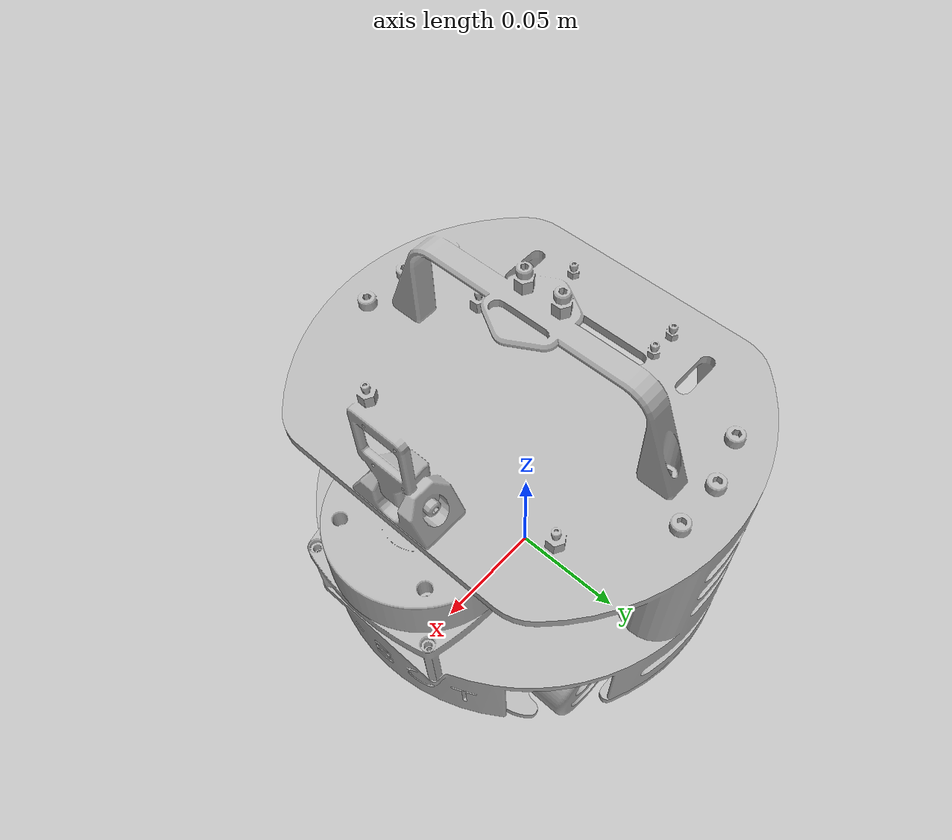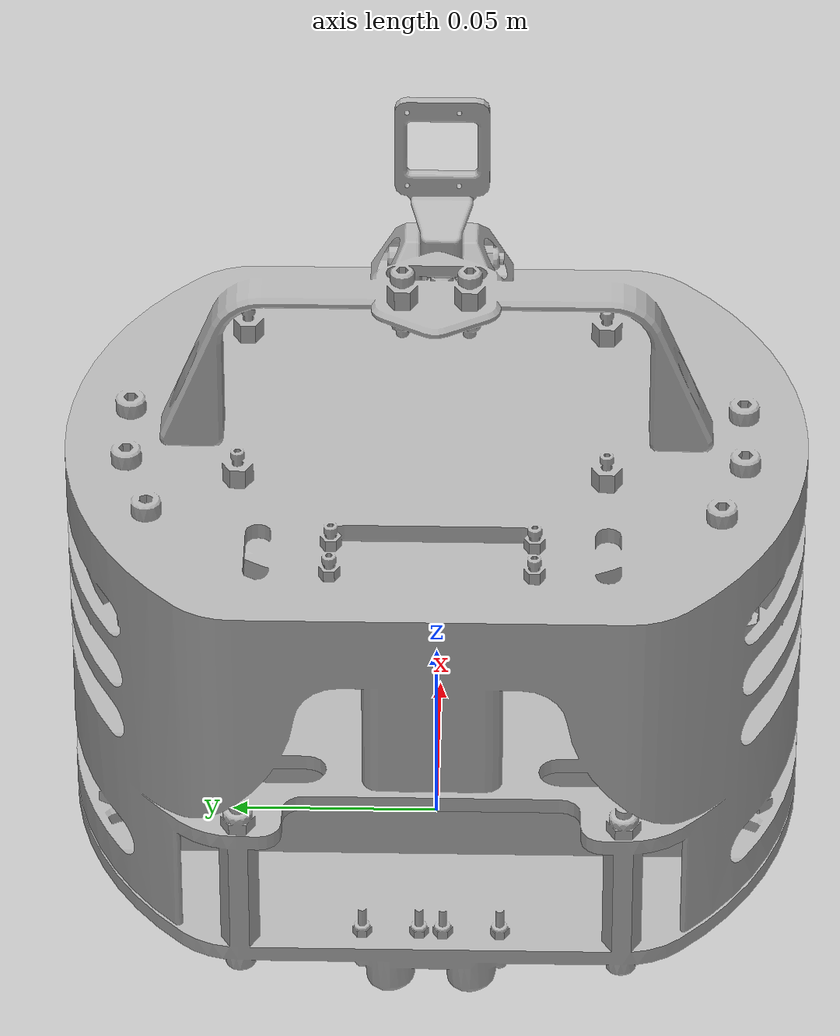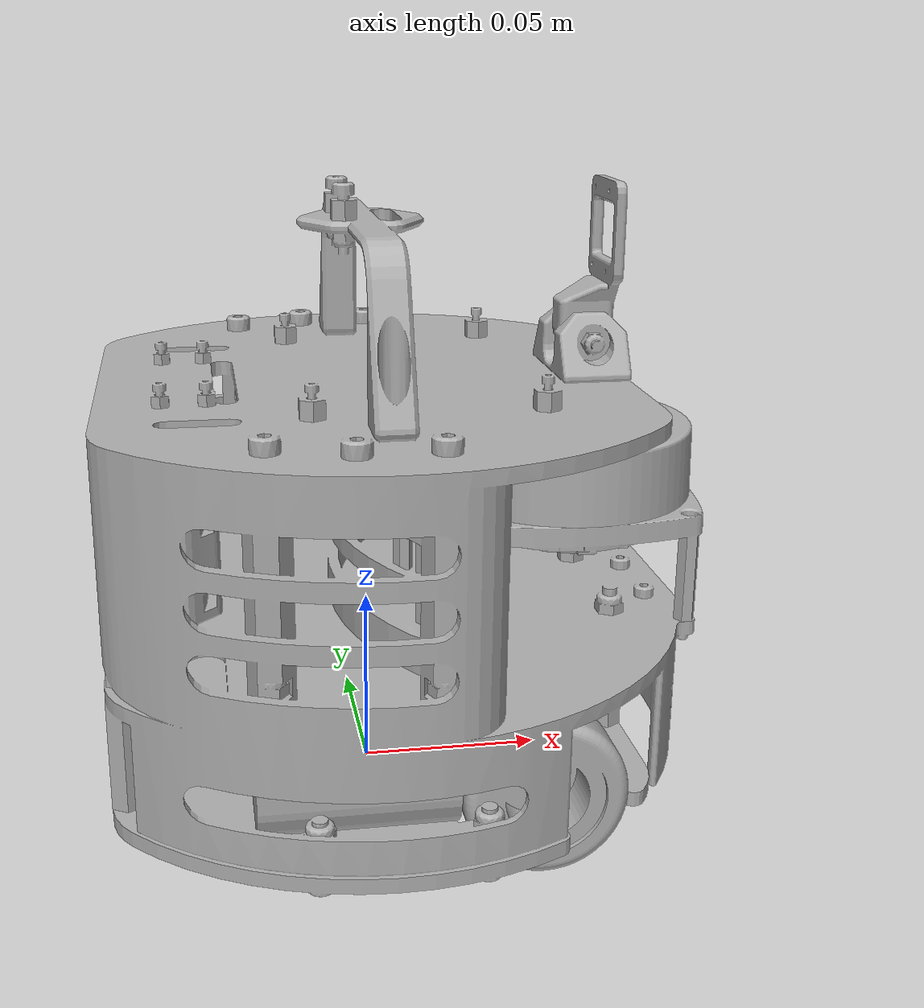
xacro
<?xml version="1.0" ?>
<robot name="qbot-urdf" xmlns:xacro="http://www.ros.org/wiki/xacro">

<xacro:include filename="$(find qbot-urdf_description)/urdf/materials.xacro" />
<xacro:include filename="$(find qbot-urdf_description)/urdf/qbot-urdf.trans" />
<xacro:include filename="$(find qbot-urdf_description)/urdf/qbot-urdf.gazebo" />
<link name="base_link">
  <inertial>
    <origin rpy="0 0 0" xyz="-9.562856620619356e-05 -2.3834541287568013e-05 0.06377004995936014"/>
    <mass value="0.4341808115577019"/>
    <inertia ixx="0.001744" ixy="0.0" ixz="3.1e-05" iyy="0.001414" iyz="-0.0" izz="0.001778"/>
  </inertial>
  <visual>
    <origin rpy="0 0 0" xyz="0 0 0"/>
    <geometry>
      <mesh filename="package://qbot-urdf_description/meshes/base_link.stl" scale="0.001 0.001 0.001"/>
    </geometry>
    <material name="silver"/>
  </visual>
  <collision>
    <origin rpy="0 0 0" xyz="0 0 0"/>
    <geometry>
      <mesh filename="package://qbot-urdf_description/meshes/base_link.stl" scale="0.001 0.001 0.001"/>
    </geometry>
  </collision>
</link>

<link name="lidar_1">
  <inertial>
    <origin rpy="0 0 0" xyz="-0.0032369885513544375 -0.000363627882546586 0.013199471314095074"/>
    <mass value="0.010966225281964493"/>
    <inertia ixx="5e-06" ixy="-0.0" ixz="-0.0" iyy="5e-06" iyz="-0.0" izz="1e-05"/>
  </inertial>
  <visual>
    <origin rpy="0 0 0" xyz="-0.05581 2.6e-05 -0.080623"/>
    <geometry>
      <mesh filename="package://qbot-urdf_description/meshes/lidar_1.stl" scale="0.001 0.001 0.001"/>
    </geometry>
    <material name="silver"/>
  </visual>
  <collision>
    <origin rpy="0 0 0" xyz="-0.05581 2.6e-05 -0.080623"/>
    <geometry>
      <mesh filename="package://qbot-urdf_description/meshes/lidar_1.stl" scale="0.001 0.001 0.001"/>
    </geometry>
  </collision>
</link>

<link name="left_wheel_1">
  <inertial>
    <origin rpy="0 0 0" xyz="-1.7773601634907266e-07 0.0001934840502160473 -1.502494489241668e-07"/>
    <mass value="0.01991817311932673"/>
    <inertia ixx="3e-06" ixy="-0.0" ixz="0.0" iyy="6e-06" iyz="-0.0" izz="3e-06"/>
  </inertial>
  <visual>
    <origin rpy="0 0 0" xyz="-0.036697 -0.059674 -0.021123"/>
    <geometry>
      <mesh filename="package://qbot-urdf_description/meshes/left_wheel_1.stl" scale="0.001 0.001 0.001"/>
    </geometry>
    <material name="silver"/>
  </visual>
  <collision>
    <origin rpy="0 0 0" xyz="-0.036697 -0.059674 -0.021123"/>
    <geometry>
      <mesh filename="package://qbot-urdf_description/meshes/left_wheel_1.stl" scale="0.001 0.001 0.001"/>
    </geometry>
  </collision>
</link>

<link name="right_wheel_1">
  <inertial>
    <origin rpy="0 0 0" xyz="-1.7773601597437239e-07 -0.00019353902336186057 -1.502494476300631e-07"/>
    <mass value="0.01991817311932673"/>
    <inertia ixx="3e-06" ixy="-0.0" ixz="0.0" iyy="6e-06" iyz="0.0" izz="3e-06"/>
  </inertial>
  <visual>
    <origin rpy="0 0 0" xyz="-0.036697 0.059726 -0.021123"/>
    <geometry>
      <mesh filename="package://qbot-urdf_description/meshes/right_wheel_1.stl" scale="0.001 0.001 0.001"/>
    </geometry>
    <material name="silver"/>
  </visual>
  <collision>
    <origin rpy="0 0 0" xyz="-0.036697 0.059726 -0.021123"/>
    <geometry>
      <mesh filename="package://qbot-urdf_description/meshes/right_wheel_1.stl" scale="0.001 0.001 0.001"/>
    </geometry>
  </collision>
</link>

<link name="bateria11v_1">
  <inertial>
    <origin rpy="0 0 0" xyz="0.006122822263983904 -0.0008030274865728127 0.017375849750557667"/>
    <mass value="0.34643451536729414"/>
    <inertia ixx="0.0006" ixy="-0.0" ixz="0.0" iyy="9.1e-05" iyz="0.0" izz="0.000651"/>
  </inertial>
  <visual>
    <origin rpy="0 0 0" xyz="0.016926 -0.000777 -0.012097"/>
    <geometry>
      <mesh filename="package://qbot-urdf_description/meshes/bateria11v_1.stl" scale="0.001 0.001 0.001"/>
    </geometry>
    <material name="silver"/>
  </visual>
  <collision>
    <origin rpy="0 0 0" xyz="0.016926 -0.000777 -0.012097"/>
    <geometry>
      <mesh filename="package://qbot-urdf_description/meshes/bateria11v_1.stl" scale="0.001 0.001 0.001"/>
    </geometry>
  </collision>
</link>

<link name="base_rplidar_1">
  <inertial>
    <origin rpy="0 0 0" xyz="-0.03589689207758375 0.027884119521346243 0.02478675716160393"/>
    <mass value="0.015390780356555523"/>
    <inertia ixx="7e-06" ixy="-0.0" ixz="0.0" iyy="1.2e-05" iyz="-0.0" izz="1.8e-05"/>
  </inertial>
  <visual>
    <origin rpy="0 0 0" xyz="-0.08381 0.028026 -0.050123"/>
    <geometry>
      <mesh filename="package://qbot-urdf_description/meshes/base_rplidar_1.stl" scale="0.001 0.001 0.001"/>
    </geometry>
    <material name="silver"/>
  </visual>
  <collision>
    <origin rpy="0 0 0" xyz="-0.08381 0.028026 -0.050123"/>
    <geometry>
      <mesh filename="package://qbot-urdf_description/meshes/base_rplidar_1.stl" scale="0.001 0.001 0.001"/>
    </geometry>
  </collision>
</link>

<joint name="Rigid10" type="fixed">
  <origin rpy="0 0 0" xyz="-0.028 0.028 0.0305"/>
  <parent link="base_rplidar_1"/>
  <child link="lidar_1"/>
</joint>

<joint name="Rev15" type="continuous">
  <origin rpy="0 0 0" xyz="0.036697 0.059674 0.021123"/>
  <parent link="base_link"/>
  <child link="left_wheel_1"/>
  <axis xyz="-0.0 1.0 -0.0"/>
</joint>

<joint name="Rev16" type="continuous">
  <origin rpy="0 0 0" xyz="0.036697 -0.059726 0.021123"/>
  <parent link="base_link"/>
  <child link="right_wheel_1"/>
  <axis xyz="0.0 1.0 0.0"/>
</joint>

<joint name="Rigid18" type="fixed">
  <origin rpy="0 0 0" xyz="-0.016926 0.000777 0.012097"/>
  <parent link="base_link"/>
  <child link="bateria11v_1"/>
</joint>

<joint name="Rigid19" type="fixed">
  <origin rpy="0 0 0" xyz="0.08381 -0.028026 0.050123"/>
  <parent link="base_link"/>
  <child link="base_rplidar_1"/>
</joint>

</robot>

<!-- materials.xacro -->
<robot name="qbot-urdf" xmlns:xacro="http://www.ros.org/wiki/xacro" >

<material name="silver">
  <color rgba="0.700 0.700 0.700 1.000"/>
</material>

</robot>

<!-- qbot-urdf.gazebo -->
<robot name="qbot-urdf" xmlns:xacro="http://www.ros.org/wiki/xacro" >

<xacro:property name="body_color" value="Gazebo/Silver" />

<gazebo>
  <plugin filename="libgazebo_ros_control.so" name="control"/>
</gazebo>
<gazebo reference="base_link">
  <material>${body_color}</material>
  <mu1>0.02</mu1>
  <mu2>0.02</mu2>
  <selfCollide>true</selfCollide>
  <gravity>true</gravity>
</gazebo>

<gazebo reference="lidar_1">
  <material>${body_color}</material>
  <mu1>0.02</mu1>
  <mu2>0.02</mu2>
  <selfCollide>true</selfCollide>
</gazebo>

<gazebo reference="left_wheel_1">
  <material>${body_color}</material>
  <mu1>100</mu1>
  <mu2>100</mu2>
  <selfCollide>true</selfCollide>
</gazebo>

<gazebo reference="right_wheel_1">
  <material>${body_color}</material>
  <mu1>100</mu1>
  <mu2>100</mu2>
  <selfCollide>true</selfCollide>
</gazebo>

<gazebo reference="bateria11v_1">
  <material>${body_color}</material>
  <mu1>0.02</mu1>
  <mu2>0.02</mu2>
  <selfCollide>true</selfCollide>
</gazebo>

<gazebo reference="base_rplidar_1">
  <material>${body_color}</material>
  <mu1>0.02</mu1>
  <mu2>0.02</mu2>
  <selfCollide>true</selfCollide>
</gazebo>
<!-- DIFF DRIVE PLUGIN -->
<gazebo>
  <plugin name="differential_drive_controller" filename="libgazebo_ros_diff_drive.so">

    <!-- Plugin update rate in Hz -->
    <updateRate>10</updateRate>

    <!-- Name of left joint, defaults to `left_joint` -->
    <leftJoint>Rev15</leftJoint>

    <!-- Name of right joint, defaults to `right_joint` -->
    <rightJoint>Rev16</rightJoint>

    <!-- The distance from the center of one wheel to the other, in meters, defaults to 0.34 m -->
    <wheelSeparation>0.117888</wheelSeparation>

    <!-- Diameter of the wheels, in meters, defaults to 0.15 m -->
    <wheelDiameter>0.042</wheelDiameter>

    <!-- Wheel acceleration, in rad/s^2, defaults to 0.0 rad/s^2 -->
    <wheelAcceleration>1.0</wheelAcceleration>

    <!-- Maximum torque which the wheels can produce, in Nm, defaults to 5 Nm -->
    <wheelTorque>0.196133</wheelTorque>

    <!-- Topic to receive geometry_msgs/Twist message commands, defaults to `cmd_vel` -->
    <commandTopic>cmd_vel</commandTopic>

    <!-- Topic to publish nav_msgs/Odometry messages, defaults to `odom` -->
    <odometryTopic>odom</odometryTopic>

    <!-- Odometry frame, defaults to `odom` -->
    <odometryFrame>odom</odometryFrame>

    <!-- Robot frame to calculate odometry from, defaults to `base_footprint` -->
    <robotBaseFrame>base_link</robotBaseFrame>

    <!-- Odometry source, 0 for ENCODER, 1 for WORLD, defaults to WORLD -->
    <odometrySource>1</odometrySource>

    <!-- Set to true to publish transforms for the wheel links, defaults to false -->
    <publishWheelTF>true</publishWheelTF>

    <!-- Set to true to publish transforms for the odometry, defaults to true -->
    <publishOdom>true</publishOdom>

    <!-- Set to true to publish sensor_msgs/JointState on /joint_states for the wheel joints, defaults to false -->
    <publishWheelJointState>true</publishWheelJointState>

    <!-- Set to true to swap right and left wheels, defaults to true -->
    <legacyMode>false</legacyMode>
  </plugin>
  </gazebo>

  <!-- LIDAR PLUGIN -->
  <!-- Name of the joint -->
  <gazebo reference="lidar_1">
  <!-- Change sensor type and the name (you can choose) -->
    <sensor type="ray" name="lidar_qbot">
      <pose>0 0 0 0 0 0</pose>
      <visualize>true</visualize>
      <update_rate>40</update_rate>
      <ray>
        <scan>
          <horizontal>
            <samples>720</samples>
            <resolution>1</resolution>
            <!-- RADIANS (real 1.91)-->
            <min_angle>-1.91</min_angle>
            <max_angle>1.91</max_angle>
          </horizontal>
        </scan>
        <range>
          <min>0.10</min>
          <max>10.0</max>
          <resolution>0.01</resolution>
        </range>
        <noise>
          <type>gaussian</type>
          <mean>0.0</mean>
          <stddev>0.01</stddev>
        </noise>
      </ray>
      <plugin name="gazebo_ros_head_hokuyo_controller" filename="libgazebo_ros_laser.so">
        <!-- Name of the topic to publish -->
        <topicName>/scan</topicName>
        <!-- Name of the part -->
        <frameName>lidar_1</frameName>
      </plugin>
    </sensor>
</gazebo>

</robot>
